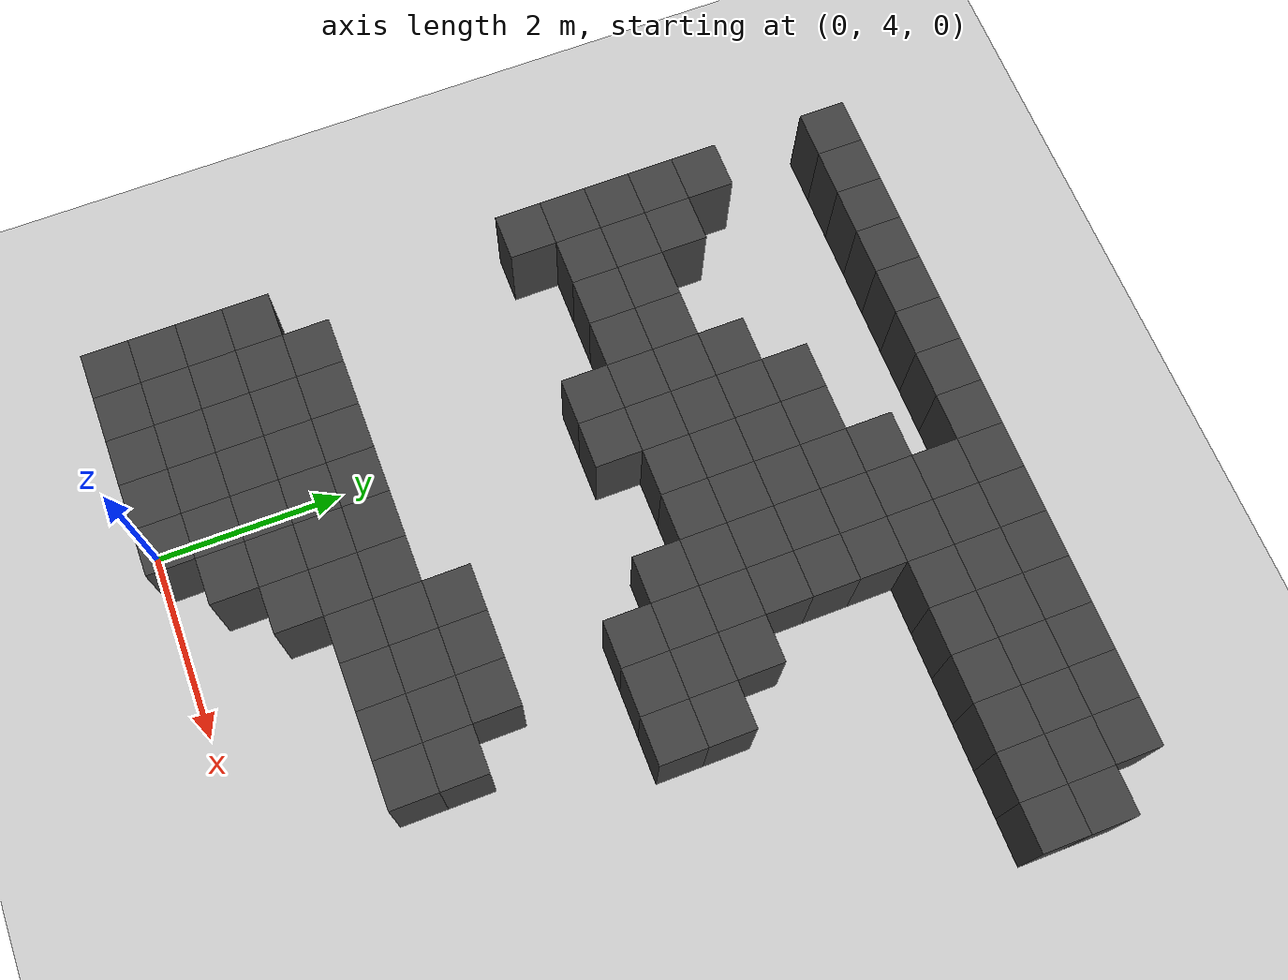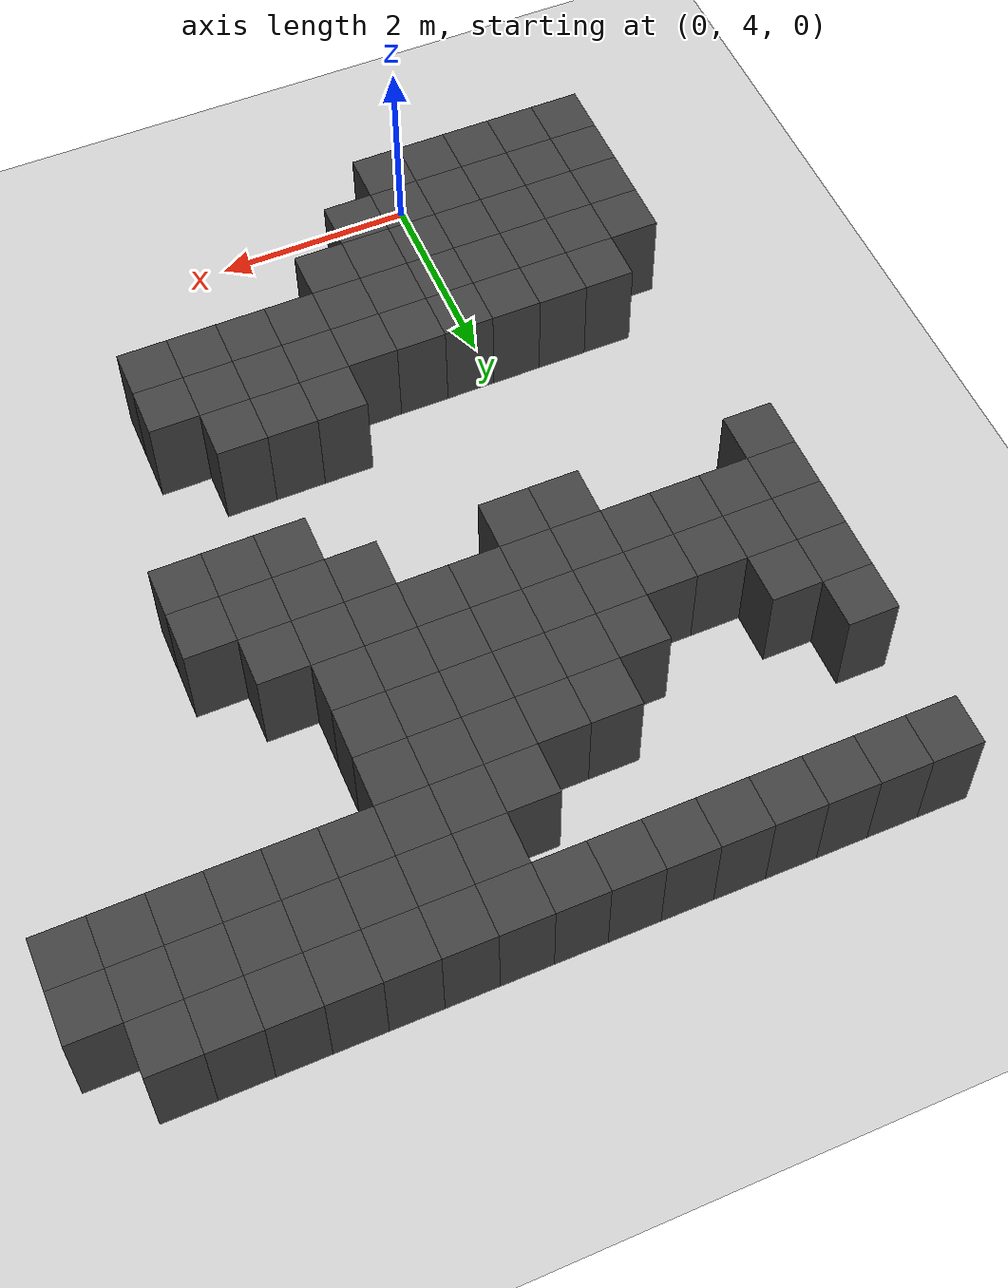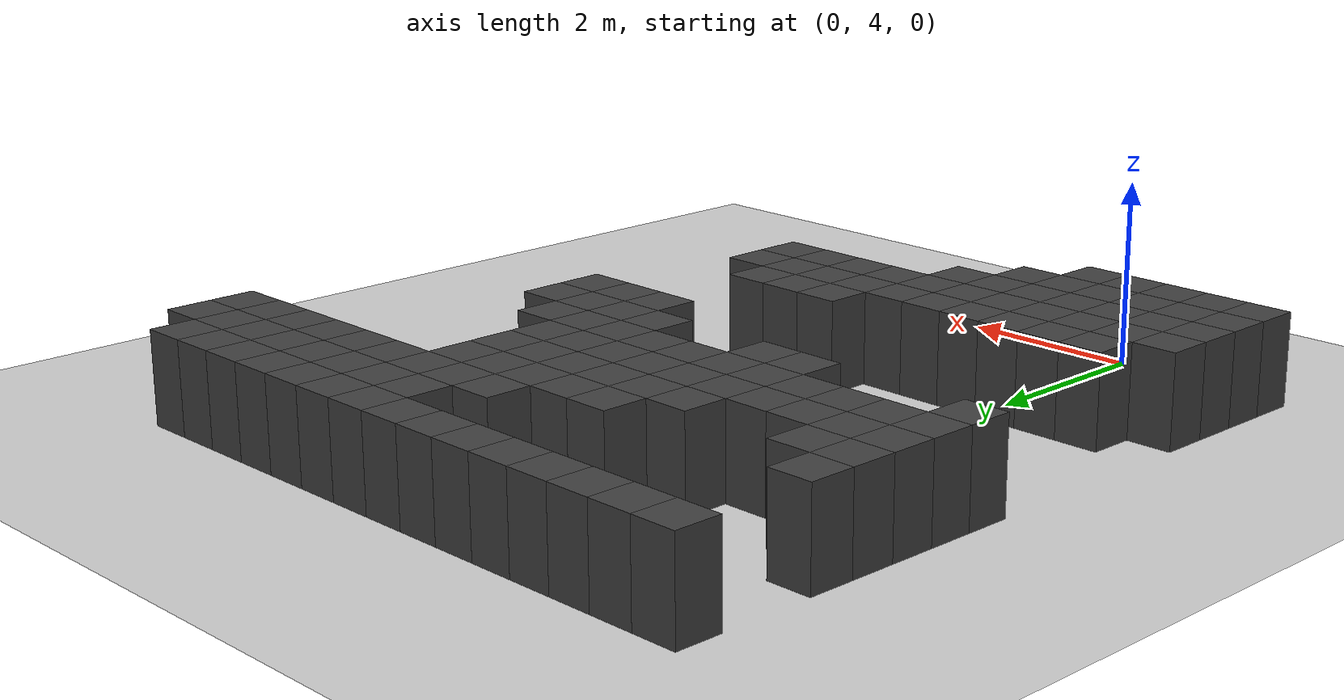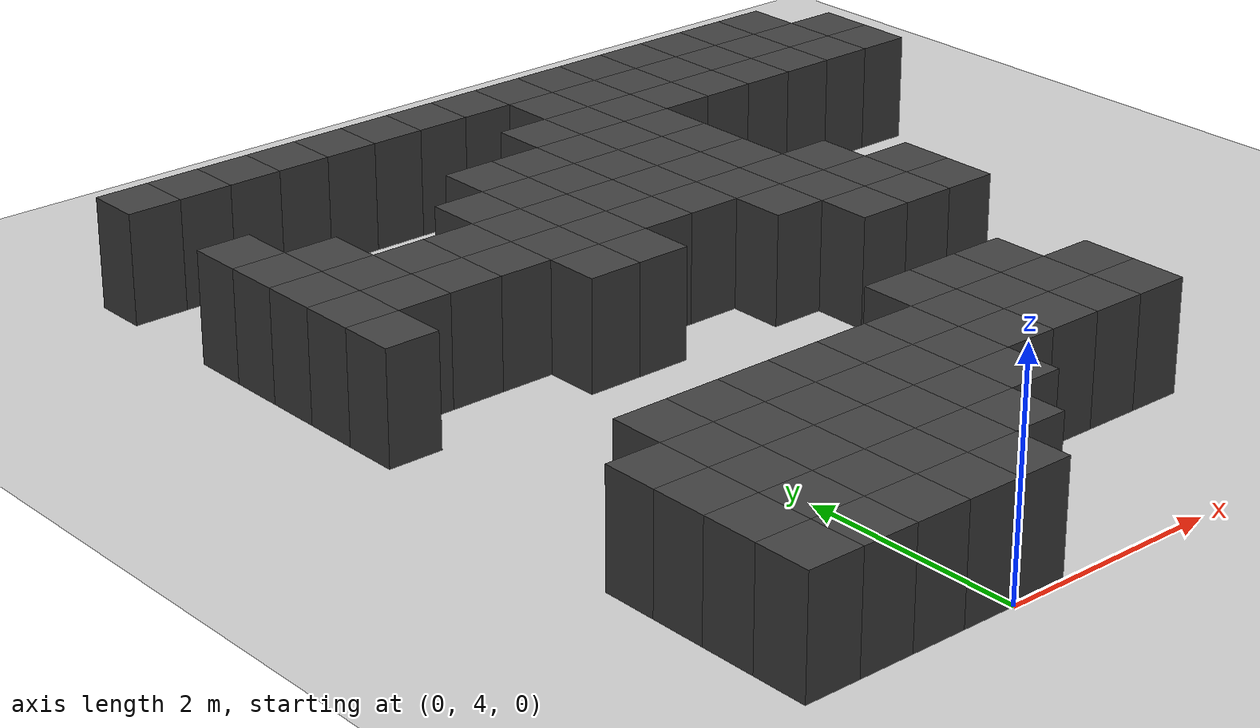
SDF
<sdf version="1.7">
 <world name="map_9705">
  <model name="ground_plane">
   <static>true</static>
   <link name="link">
    <collision name="collision">
     <geometry><plane><normal>0 0 1</normal><size>200 200</size></plane></geometry>
    </collision>
    <visual name="visual">
     <geometry><plane><normal>0 0 1</normal><size>200 200</size></plane></geometry>
     <material><ambient>0.8 0.8 0.8 1</ambient><diffuse>0.8 0.8 0.8 1</diffuse></material>
    </visual>
   </link>
  </model>
  <model name="maze_environment">
   <static>true</static>
   <link name="wall_21">
    <pose>-1.750 12.250 0.500 0 0 0</pose>
    <collision name="col"><geometry><box><size>0.5 0.5 1.0</size></box></geometry></collision>
    <visual name="vis">
     <geometry><box><size>0.5 0.5 1.0</size></box></geometry>
     <material><ambient>0.15 0.15 0.15 1</ambient><diffuse>0.25 0.25 0.25 1</diffuse></material>
    </visual>
   </link>
   <link name="wall_22">
    <pose>-1.250 12.250 0.500 0 0 0</pose>
    <collision name="col"><geometry><box><size>0.5 0.5 1.0</size></box></geometry></collision>
    <visual name="vis">
     <geometry><box><size>0.5 0.5 1.0</size></box></geometry>
     <material><ambient>0.15 0.15 0.15 1</ambient><diffuse>0.25 0.25 0.25 1</diffuse></material>
    </visual>
   </link>
   <link name="wall_23">
    <pose>-0.750 12.250 0.500 0 0 0</pose>
    <collision name="col"><geometry><box><size>0.5 0.5 1.0</size></box></geometry></collision>
    <visual name="vis">
     <geometry><box><size>0.5 0.5 1.0</size></box></geometry>
     <material><ambient>0.15 0.15 0.15 1</ambient><diffuse>0.25 0.25 0.25 1</diffuse></material>
    </visual>
   </link>
   <link name="wall_24">
    <pose>-0.250 12.250 0.500 0 0 0</pose>
    <collision name="col"><geometry><box><size>0.5 0.5 1.0</size></box></geometry></collision>
    <visual name="vis">
     <geometry><box><size>0.5 0.5 1.0</size></box></geometry>
     <material><ambient>0.15 0.15 0.15 1</ambient><diffuse>0.25 0.25 0.25 1</diffuse></material>
    </visual>
   </link>
   <link name="wall_25">
    <pose>0.250 12.250 0.500 0 0 0</pose>
    <collision name="col"><geometry><box><size>0.5 0.5 1.0</size></box></geometry></collision>
    <visual name="vis">
     <geometry><box><size>0.5 0.5 1.0</size></box></geometry>
     <material><ambient>0.15 0.15 0.15 1</ambient><diffuse>0.25 0.25 0.25 1</diffuse></material>
    </visual>
   </link>
   <link name="wall_26">
    <pose>0.750 12.250 0.500 0 0 0</pose>
    <collision name="col"><geometry><box><size>0.5 0.5 1.0</size></box></geometry></collision>
    <visual name="vis">
     <geometry><box><size>0.5 0.5 1.0</size></box></geometry>
     <material><ambient>0.15 0.15 0.15 1</ambient><diffuse>0.25 0.25 0.25 1</diffuse></material>
    </visual>
   </link>
   <link name="wall_27">
    <pose>1.250 12.250 0.500 0 0 0</pose>
    <collision name="col"><geometry><box><size>0.5 0.5 1.0</size></box></geometry></collision>
    <visual name="vis">
     <geometry><box><size>0.5 0.5 1.0</size></box></geometry>
     <material><ambient>0.15 0.15 0.15 1</ambient><diffuse>0.25 0.25 0.25 1</diffuse></material>
    </visual>
   </link>
   <link name="wall_28">
    <pose>1.750 12.250 0.500 0 0 0</pose>
    <collision name="col"><geometry><box><size>0.5 0.5 1.0</size></box></geometry></collision>
    <visual name="vis">
     <geometry><box><size>0.5 0.5 1.0</size></box></geometry>
     <material><ambient>0.15 0.15 0.15 1</ambient><diffuse>0.25 0.25 0.25 1</diffuse></material>
    </visual>
   </link>
   <link name="wall_29">
    <pose>2.250 12.250 0.500 0 0 0</pose>
    <collision name="col"><geometry><box><size>0.5 0.5 1.0</size></box></geometry></collision>
    <visual name="vis">
     <geometry><box><size>0.5 0.5 1.0</size></box></geometry>
     <material><ambient>0.15 0.15 0.15 1</ambient><diffuse>0.25 0.25 0.25 1</diffuse></material>
    </visual>
   </link>
   <link name="wall_30">
    <pose>2.750 12.250 0.500 0 0 0</pose>
    <collision name="col"><geometry><box><size>0.5 0.5 1.0</size></box></geometry></collision>
    <visual name="vis">
     <geometry><box><size>0.5 0.5 1.0</size></box></geometry>
     <material><ambient>0.15 0.15 0.15 1</ambient><diffuse>0.25 0.25 0.25 1</diffuse></material>
    </visual>
   </link>
   <link name="wall_31">
    <pose>3.250 12.250 0.500 0 0 0</pose>
    <collision name="col"><geometry><box><size>0.5 0.5 1.0</size></box></geometry></collision>
    <visual name="vis">
     <geometry><box><size>0.5 0.5 1.0</size></box></geometry>
     <material><ambient>0.15 0.15 0.15 1</ambient><diffuse>0.25 0.25 0.25 1</diffuse></material>
    </visual>
   </link>
   <link name="wall_32">
    <pose>3.750 12.250 0.500 0 0 0</pose>
    <collision name="col"><geometry><box><size>0.5 0.5 1.0</size></box></geometry></collision>
    <visual name="vis">
     <geometry><box><size>0.5 0.5 1.0</size></box></geometry>
     <material><ambient>0.15 0.15 0.15 1</ambient><diffuse>0.25 0.25 0.25 1</diffuse></material>
    </visual>
   </link>
   <link name="wall_33">
    <pose>4.250 12.250 0.500 0 0 0</pose>
    <collision name="col"><geometry><box><size>0.5 0.5 1.0</size></box></geometry></collision>
    <visual name="vis">
     <geometry><box><size>0.5 0.5 1.0</size></box></geometry>
     <material><ambient>0.15 0.15 0.15 1</ambient><diffuse>0.25 0.25 0.25 1</diffuse></material>
    </visual>
   </link>
   <link name="wall_34">
    <pose>4.750 12.250 0.500 0 0 0</pose>
    <collision name="col"><geometry><box><size>0.5 0.5 1.0</size></box></geometry></collision>
    <visual name="vis">
     <geometry><box><size>0.5 0.5 1.0</size></box></geometry>
     <material><ambient>0.15 0.15 0.15 1</ambient><diffuse>0.25 0.25 0.25 1</diffuse></material>
    </visual>
   </link>
   <link name="wall_35">
    <pose>5.250 12.250 0.500 0 0 0</pose>
    <collision name="col"><geometry><box><size>0.5 0.5 1.0</size></box></geometry></collision>
    <visual name="vis">
     <geometry><box><size>0.5 0.5 1.0</size></box></geometry>
     <material><ambient>0.15 0.15 0.15 1</ambient><diffuse>0.25 0.25 0.25 1</diffuse></material>
    </visual>
   </link>
   <link name="wall_60">
    <pose>2.250 11.750 0.500 0 0 0</pose>
    <collision name="col"><geometry><box><size>0.5 0.5 1.0</size></box></geometry></collision>
    <visual name="vis">
     <geometry><box><size>0.5 0.5 1.0</size></box></geometry>
     <material><ambient>0.15 0.15 0.15 1</ambient><diffuse>0.25 0.25 0.25 1</diffuse></material>
    </visual>
   </link>
   <link name="wall_61">
    <pose>2.750 11.750 0.500 0 0 0</pose>
    <collision name="col"><geometry><box><size>0.5 0.5 1.0</size></box></geometry></collision>
    <visual name="vis">
     <geometry><box><size>0.5 0.5 1.0</size></box></geometry>
     <material><ambient>0.15 0.15 0.15 1</ambient><diffuse>0.25 0.25 0.25 1</diffuse></material>
    </visual>
   </link>
   <link name="wall_62">
    <pose>3.250 11.750 0.500 0 0 0</pose>
    <collision name="col"><geometry><box><size>0.5 0.5 1.0</size></box></geometry></collision>
    <visual name="vis">
     <geometry><box><size>0.5 0.5 1.0</size></box></geometry>
     <material><ambient>0.15 0.15 0.15 1</ambient><diffuse>0.25 0.25 0.25 1</diffuse></material>
    </visual>
   </link>
   <link name="wall_63">
    <pose>3.750 11.750 0.500 0 0 0</pose>
    <collision name="col"><geometry><box><size>0.5 0.5 1.0</size></box></geometry></collision>
    <visual name="vis">
     <geometry><box><size>0.5 0.5 1.0</size></box></geometry>
     <material><ambient>0.15 0.15 0.15 1</ambient><diffuse>0.25 0.25 0.25 1</diffuse></material>
    </visual>
   </link>
   <link name="wall_64">
    <pose>4.250 11.750 0.500 0 0 0</pose>
    <collision name="col"><geometry><box><size>0.5 0.5 1.0</size></box></geometry></collision>
    <visual name="vis">
     <geometry><box><size>0.5 0.5 1.0</size></box></geometry>
     <material><ambient>0.15 0.15 0.15 1</ambient><diffuse>0.25 0.25 0.25 1</diffuse></material>
    </visual>
   </link>
   <link name="wall_65">
    <pose>4.750 11.750 0.500 0 0 0</pose>
    <collision name="col"><geometry><box><size>0.5 0.5 1.0</size></box></geometry></collision>
    <visual name="vis">
     <geometry><box><size>0.5 0.5 1.0</size></box></geometry>
     <material><ambient>0.15 0.15 0.15 1</ambient><diffuse>0.25 0.25 0.25 1</diffuse></material>
    </visual>
   </link>
   <link name="wall_66">
    <pose>5.250 11.750 0.500 0 0 0</pose>
    <collision name="col"><geometry><box><size>0.5 0.5 1.0</size></box></geometry></collision>
    <visual name="vis">
     <geometry><box><size>0.5 0.5 1.0</size></box></geometry>
     <material><ambient>0.15 0.15 0.15 1</ambient><diffuse>0.25 0.25 0.25 1</diffuse></material>
    </visual>
   </link>
   <link name="wall_67">
    <pose>5.750 11.750 0.500 0 0 0</pose>
    <collision name="col"><geometry><box><size>0.5 0.5 1.0</size></box></geometry></collision>
    <visual name="vis">
     <geometry><box><size>0.5 0.5 1.0</size></box></geometry>
     <material><ambient>0.15 0.15 0.15 1</ambient><diffuse>0.25 0.25 0.25 1</diffuse></material>
    </visual>
   </link>
   <link name="wall_84">
    <pose>1.750 11.250 0.500 0 0 0</pose>
    <collision name="col"><geometry><box><size>0.5 0.5 1.0</size></box></geometry></collision>
    <visual name="vis">
     <geometry><box><size>0.5 0.5 1.0</size></box></geometry>
     <material><ambient>0.15 0.15 0.15 1</ambient><diffuse>0.25 0.25 0.25 1</diffuse></material>
    </visual>
   </link>
   <link name="wall_85">
    <pose>2.250 11.250 0.500 0 0 0</pose>
    <collision name="col"><geometry><box><size>0.5 0.5 1.0</size></box></geometry></collision>
    <visual name="vis">
     <geometry><box><size>0.5 0.5 1.0</size></box></geometry>
     <material><ambient>0.15 0.15 0.15 1</ambient><diffuse>0.25 0.25 0.25 1</diffuse></material>
    </visual>
   </link>
   <link name="wall_86">
    <pose>2.750 11.250 0.500 0 0 0</pose>
    <collision name="col"><geometry><box><size>0.5 0.5 1.0</size></box></geometry></collision>
    <visual name="vis">
     <geometry><box><size>0.5 0.5 1.0</size></box></geometry>
     <material><ambient>0.15 0.15 0.15 1</ambient><diffuse>0.25 0.25 0.25 1</diffuse></material>
    </visual>
   </link>
   <link name="wall_87">
    <pose>3.250 11.250 0.500 0 0 0</pose>
    <collision name="col"><geometry><box><size>0.5 0.5 1.0</size></box></geometry></collision>
    <visual name="vis">
     <geometry><box><size>0.5 0.5 1.0</size></box></geometry>
     <material><ambient>0.15 0.15 0.15 1</ambient><diffuse>0.25 0.25 0.25 1</diffuse></material>
    </visual>
   </link>
   <link name="wall_88">
    <pose>3.750 11.250 0.500 0 0 0</pose>
    <collision name="col"><geometry><box><size>0.5 0.5 1.0</size></box></geometry></collision>
    <visual name="vis">
     <geometry><box><size>0.5 0.5 1.0</size></box></geometry>
     <material><ambient>0.15 0.15 0.15 1</ambient><diffuse>0.25 0.25 0.25 1</diffuse></material>
    </visual>
   </link>
   <link name="wall_89">
    <pose>4.250 11.250 0.500 0 0 0</pose>
    <collision name="col"><geometry><box><size>0.5 0.5 1.0</size></box></geometry></collision>
    <visual name="vis">
     <geometry><box><size>0.5 0.5 1.0</size></box></geometry>
     <material><ambient>0.15 0.15 0.15 1</ambient><diffuse>0.25 0.25 0.25 1</diffuse></material>
    </visual>
   </link>
   <link name="wall_90">
    <pose>4.750 11.250 0.500 0 0 0</pose>
    <collision name="col"><geometry><box><size>0.5 0.5 1.0</size></box></geometry></collision>
    <visual name="vis">
     <geometry><box><size>0.5 0.5 1.0</size></box></geometry>
     <material><ambient>0.15 0.15 0.15 1</ambient><diffuse>0.25 0.25 0.25 1</diffuse></material>
    </visual>
   </link>
   <link name="wall_91">
    <pose>5.250 11.250 0.500 0 0 0</pose>
    <collision name="col"><geometry><box><size>0.5 0.5 1.0</size></box></geometry></collision>
    <visual name="vis">
     <geometry><box><size>0.5 0.5 1.0</size></box></geometry>
     <material><ambient>0.15 0.15 0.15 1</ambient><diffuse>0.25 0.25 0.25 1</diffuse></material>
    </visual>
   </link>
   <link name="wall_92">
    <pose>5.750 11.250 0.500 0 0 0</pose>
    <collision name="col"><geometry><box><size>0.5 0.5 1.0</size></box></geometry></collision>
    <visual name="vis">
     <geometry><box><size>0.5 0.5 1.0</size></box></geometry>
     <material><ambient>0.15 0.15 0.15 1</ambient><diffuse>0.25 0.25 0.25 1</diffuse></material>
    </visual>
   </link>
   <link name="wall_104">
    <pose>-1.750 10.750 0.500 0 0 0</pose>
    <collision name="col"><geometry><box><size>0.5 0.5 1.0</size></box></geometry></collision>
    <visual name="vis">
     <geometry><box><size>0.5 0.5 1.0</size></box></geometry>
     <material><ambient>0.15 0.15 0.15 1</ambient><diffuse>0.25 0.25 0.25 1</diffuse></material>
    </visual>
   </link>
   <link name="wall_105">
    <pose>0.750 10.750 0.500 0 0 0</pose>
    <collision name="col"><geometry><box><size>0.5 0.5 1.0</size></box></geometry></collision>
    <visual name="vis">
     <geometry><box><size>0.5 0.5 1.0</size></box></geometry>
     <material><ambient>0.15 0.15 0.15 1</ambient><diffuse>0.25 0.25 0.25 1</diffuse></material>
    </visual>
   </link>
   <link name="wall_106">
    <pose>1.250 10.750 0.500 0 0 0</pose>
    <collision name="col"><geometry><box><size>0.5 0.5 1.0</size></box></geometry></collision>
    <visual name="vis">
     <geometry><box><size>0.5 0.5 1.0</size></box></geometry>
     <material><ambient>0.15 0.15 0.15 1</ambient><diffuse>0.25 0.25 0.25 1</diffuse></material>
    </visual>
   </link>
   <link name="wall_107">
    <pose>1.750 10.750 0.500 0 0 0</pose>
    <collision name="col"><geometry><box><size>0.5 0.5 1.0</size></box></geometry></collision>
    <visual name="vis">
     <geometry><box><size>0.5 0.5 1.0</size></box></geometry>
     <material><ambient>0.15 0.15 0.15 1</ambient><diffuse>0.25 0.25 0.25 1</diffuse></material>
    </visual>
   </link>
   <link name="wall_108">
    <pose>2.250 10.750 0.500 0 0 0</pose>
    <collision name="col"><geometry><box><size>0.5 0.5 1.0</size></box></geometry></collision>
    <visual name="vis">
     <geometry><box><size>0.5 0.5 1.0</size></box></geometry>
     <material><ambient>0.15 0.15 0.15 1</ambient><diffuse>0.25 0.25 0.25 1</diffuse></material>
    </visual>
   </link>
   <link name="wall_109">
    <pose>2.750 10.750 0.500 0 0 0</pose>
    <collision name="col"><geometry><box><size>0.5 0.5 1.0</size></box></geometry></collision>
    <visual name="vis">
     <geometry><box><size>0.5 0.5 1.0</size></box></geometry>
     <material><ambient>0.15 0.15 0.15 1</ambient><diffuse>0.25 0.25 0.25 1</diffuse></material>
    </visual>
   </link>
   <link name="wall_121">
    <pose>-1.750 10.250 0.500 0 0 0</pose>
    <collision name="col"><geometry><box><size>0.5 0.5 1.0</size></box></geometry></collision>
    <visual name="vis">
     <geometry><box><size>0.5 0.5 1.0</size></box></geometry>
     <material><ambient>0.15 0.15 0.15 1</ambient><diffuse>0.25 0.25 0.25 1</diffuse></material>
    </visual>
   </link>
   <link name="wall_122">
    <pose>-1.250 10.250 0.500 0 0 0</pose>
    <collision name="col"><geometry><box><size>0.5 0.5 1.0</size></box></geometry></collision>
    <visual name="vis">
     <geometry><box><size>0.5 0.5 1.0</size></box></geometry>
     <material><ambient>0.15 0.15 0.15 1</ambient><diffuse>0.25 0.25 0.25 1</diffuse></material>
    </visual>
   </link>
   <link name="wall_123">
    <pose>0.250 10.250 0.500 0 0 0</pose>
    <collision name="col"><geometry><box><size>0.5 0.5 1.0</size></box></geometry></collision>
    <visual name="vis">
     <geometry><box><size>0.5 0.5 1.0</size></box></geometry>
     <material><ambient>0.15 0.15 0.15 1</ambient><diffuse>0.25 0.25 0.25 1</diffuse></material>
    </visual>
   </link>
   <link name="wall_124">
    <pose>0.750 10.250 0.500 0 0 0</pose>
    <collision name="col"><geometry><box><size>0.5 0.5 1.0</size></box></geometry></collision>
    <visual name="vis">
     <geometry><box><size>0.5 0.5 1.0</size></box></geometry>
     <material><ambient>0.15 0.15 0.15 1</ambient><diffuse>0.25 0.25 0.25 1</diffuse></material>
    </visual>
   </link>
   <link name="wall_125">
    <pose>1.250 10.250 0.500 0 0 0</pose>
    <collision name="col"><geometry><box><size>0.5 0.5 1.0</size></box></geometry></collision>
    <visual name="vis">
     <geometry><box><size>0.5 0.5 1.0</size></box></geometry>
     <material><ambient>0.15 0.15 0.15 1</ambient><diffuse>0.25 0.25 0.25 1</diffuse></material>
    </visual>
   </link>
   <link name="wall_126">
    <pose>1.750 10.250 0.500 0 0 0</pose>
    <collision name="col"><geometry><box><size>0.5 0.5 1.0</size></box></geometry></collision>
    <visual name="vis">
     <geometry><box><size>0.5 0.5 1.0</size></box></geometry>
     <material><ambient>0.15 0.15 0.15 1</ambient><diffuse>0.25 0.25 0.25 1</diffuse></material>
    </visual>
   </link>
   <link name="wall_127">
    <pose>2.250 10.250 0.500 0 0 0</pose>
    <collision name="col"><geometry><box><size>0.5 0.5 1.0</size></box></geometry></collision>
    <visual name="vis">
     <geometry><box><size>0.5 0.5 1.0</size></box></geometry>
     <material><ambient>0.15 0.15 0.15 1</ambient><diffuse>0.25 0.25 0.25 1</diffuse></material>
    </visual>
   </link>
   <link name="wall_128">
    <pose>2.750 10.250 0.500 0 0 0</pose>
    <collision name="col"><geometry><box><size>0.5 0.5 1.0</size></box></geometry></collision>
    <visual name="vis">
     <geometry><box><size>0.5 0.5 1.0</size></box></geometry>
     <material><ambient>0.15 0.15 0.15 1</ambient><diffuse>0.25 0.25 0.25 1</diffuse></material>
    </visual>
   </link>
   <link name="wall_141">
    <pose>-1.750 9.750 0.500 0 0 0</pose>
    <collision name="col"><geometry><box><size>0.5 0.5 1.0</size></box></geometry></collision>
    <visual name="vis">
     <geometry><box><size>0.5 0.5 1.0</size></box></geometry>
     <material><ambient>0.15 0.15 0.15 1</ambient><diffuse>0.25 0.25 0.25 1</diffuse></material>
    </visual>
   </link>
   <link name="wall_142">
    <pose>-1.250 9.750 0.500 0 0 0</pose>
    <collision name="col"><geometry><box><size>0.5 0.5 1.0</size></box></geometry></collision>
    <visual name="vis">
     <geometry><box><size>0.5 0.5 1.0</size></box></geometry>
     <material><ambient>0.15 0.15 0.15 1</ambient><diffuse>0.25 0.25 0.25 1</diffuse></material>
    </visual>
   </link>
   <link name="wall_143">
    <pose>-0.750 9.750 0.500 0 0 0</pose>
    <collision name="col"><geometry><box><size>0.5 0.5 1.0</size></box></geometry></collision>
    <visual name="vis">
     <geometry><box><size>0.5 0.5 1.0</size></box></geometry>
     <material><ambient>0.15 0.15 0.15 1</ambient><diffuse>0.25 0.25 0.25 1</diffuse></material>
    </visual>
   </link>
   <link name="wall_144">
    <pose>-0.250 9.750 0.500 0 0 0</pose>
    <collision name="col"><geometry><box><size>0.5 0.5 1.0</size></box></geometry></collision>
    <visual name="vis">
     <geometry><box><size>0.5 0.5 1.0</size></box></geometry>
     <material><ambient>0.15 0.15 0.15 1</ambient><diffuse>0.25 0.25 0.25 1</diffuse></material>
    </visual>
   </link>
   <link name="wall_145">
    <pose>0.250 9.750 0.500 0 0 0</pose>
    <collision name="col"><geometry><box><size>0.5 0.5 1.0</size></box></geometry></collision>
    <visual name="vis">
     <geometry><box><size>0.5 0.5 1.0</size></box></geometry>
     <material><ambient>0.15 0.15 0.15 1</ambient><diffuse>0.25 0.25 0.25 1</diffuse></material>
    </visual>
   </link>
   <link name="wall_146">
    <pose>0.750 9.750 0.500 0 0 0</pose>
    <collision name="col"><geometry><box><size>0.5 0.5 1.0</size></box></geometry></collision>
    <visual name="vis">
     <geometry><box><size>0.5 0.5 1.0</size></box></geometry>
     <material><ambient>0.15 0.15 0.15 1</ambient><diffuse>0.25 0.25 0.25 1</diffuse></material>
    </visual>
   </link>
   <link name="wall_147">
    <pose>1.250 9.750 0.500 0 0 0</pose>
    <collision name="col"><geometry><box><size>0.5 0.5 1.0</size></box></geometry></collision>
    <visual name="vis">
     <geometry><box><size>0.5 0.5 1.0</size></box></geometry>
     <material><ambient>0.15 0.15 0.15 1</ambient><diffuse>0.25 0.25 0.25 1</diffuse></material>
    </visual>
   </link>
   <link name="wall_148">
    <pose>1.750 9.750 0.500 0 0 0</pose>
    <collision name="col"><geometry><box><size>0.5 0.5 1.0</size></box></geometry></collision>
    <visual name="vis">
     <geometry><box><size>0.5 0.5 1.0</size></box></geometry>
     <material><ambient>0.15 0.15 0.15 1</ambient><diffuse>0.25 0.25 0.25 1</diffuse></material>
    </visual>
   </link>
   <link name="wall_149">
    <pose>2.250 9.750 0.500 0 0 0</pose>
    <collision name="col"><geometry><box><size>0.5 0.5 1.0</size></box></geometry></collision>
    <visual name="vis">
     <geometry><box><size>0.5 0.5 1.0</size></box></geometry>
     <material><ambient>0.15 0.15 0.15 1</ambient><diffuse>0.25 0.25 0.25 1</diffuse></material>
    </visual>
   </link>
   <link name="wall_150">
    <pose>2.750 9.750 0.500 0 0 0</pose>
    <collision name="col"><geometry><box><size>0.5 0.5 1.0</size></box></geometry></collision>
    <visual name="vis">
     <geometry><box><size>0.5 0.5 1.0</size></box></geometry>
     <material><ambient>0.15 0.15 0.15 1</ambient><diffuse>0.25 0.25 0.25 1</diffuse></material>
    </visual>
   </link>
   <link name="wall_164">
    <pose>-1.750 9.250 0.500 0 0 0</pose>
    <collision name="col"><geometry><box><size>0.5 0.5 1.0</size></box></geometry></collision>
    <visual name="vis">
     <geometry><box><size>0.5 0.5 1.0</size></box></geometry>
     <material><ambient>0.15 0.15 0.15 1</ambient><diffuse>0.25 0.25 0.25 1</diffuse></material>
    </visual>
   </link>
   <link name="wall_165">
    <pose>-1.250 9.250 0.500 0 0 0</pose>
    <collision name="col"><geometry><box><size>0.5 0.5 1.0</size></box></geometry></collision>
    <visual name="vis">
     <geometry><box><size>0.5 0.5 1.0</size></box></geometry>
     <material><ambient>0.15 0.15 0.15 1</ambient><diffuse>0.25 0.25 0.25 1</diffuse></material>
    </visual>
   </link>
   <link name="wall_166">
    <pose>-0.750 9.250 0.500 0 0 0</pose>
    <collision name="col"><geometry><box><size>0.5 0.5 1.0</size></box></geometry></collision>
    <visual name="vis">
     <geometry><box><size>0.5 0.5 1.0</size></box></geometry>
     <material><ambient>0.15 0.15 0.15 1</ambient><diffuse>0.25 0.25 0.25 1</diffuse></material>
    </visual>
   </link>
   <link name="wall_167">
    <pose>-0.250 9.250 0.500 0 0 0</pose>
    <collision name="col"><geometry><box><size>0.5 0.5 1.0</size></box></geometry></collision>
    <visual name="vis">
     <geometry><box><size>0.5 0.5 1.0</size></box></geometry>
     <material><ambient>0.15 0.15 0.15 1</ambient><diffuse>0.25 0.25 0.25 1</diffuse></material>
    </visual>
   </link>
   <link name="wall_168">
    <pose>0.250 9.250 0.500 0 0 0</pose>
    <collision name="col"><geometry><box><size>0.5 0.5 1.0</size></box></geometry></collision>
    <visual name="vis">
     <geometry><box><size>0.5 0.5 1.0</size></box></geometry>
     <material><ambient>0.15 0.15 0.15 1</ambient><diffuse>0.25 0.25 0.25 1</diffuse></material>
    </visual>
   </link>
   <link name="wall_169">
    <pose>0.750 9.250 0.500 0 0 0</pose>
    <collision name="col"><geometry><box><size>0.5 0.5 1.0</size></box></geometry></collision>
    <visual name="vis">
     <geometry><box><size>0.5 0.5 1.0</size></box></geometry>
     <material><ambient>0.15 0.15 0.15 1</ambient><diffuse>0.25 0.25 0.25 1</diffuse></material>
    </visual>
   </link>
   <link name="wall_170">
    <pose>1.250 9.250 0.500 0 0 0</pose>
    <collision name="col"><geometry><box><size>0.5 0.5 1.0</size></box></geometry></collision>
    <visual name="vis">
     <geometry><box><size>0.5 0.5 1.0</size></box></geometry>
     <material><ambient>0.15 0.15 0.15 1</ambient><diffuse>0.25 0.25 0.25 1</diffuse></material>
    </visual>
   </link>
   <link name="wall_171">
    <pose>1.750 9.250 0.500 0 0 0</pose>
    <collision name="col"><geometry><box><size>0.5 0.5 1.0</size></box></geometry></collision>
    <visual name="vis">
     <geometry><box><size>0.5 0.5 1.0</size></box></geometry>
     <material><ambient>0.15 0.15 0.15 1</ambient><diffuse>0.25 0.25 0.25 1</diffuse></material>
    </visual>
   </link>
   <link name="wall_172">
    <pose>2.250 9.250 0.500 0 0 0</pose>
    <collision name="col"><geometry><box><size>0.5 0.5 1.0</size></box></geometry></collision>
    <visual name="vis">
     <geometry><box><size>0.5 0.5 1.0</size></box></geometry>
     <material><ambient>0.15 0.15 0.15 1</ambient><diffuse>0.25 0.25 0.25 1</diffuse></material>
    </visual>
   </link>
   <link name="wall_173">
    <pose>2.750 9.250 0.500 0 0 0</pose>
    <collision name="col"><geometry><box><size>0.5 0.5 1.0</size></box></geometry></collision>
    <visual name="vis">
     <geometry><box><size>0.5 0.5 1.0</size></box></geometry>
     <material><ambient>0.15 0.15 0.15 1</ambient><diffuse>0.25 0.25 0.25 1</diffuse></material>
    </visual>
   </link>
   <link name="wall_174">
    <pose>3.250 9.250 0.500 0 0 0</pose>
    <collision name="col"><geometry><box><size>0.5 0.5 1.0</size></box></geometry></collision>
    <visual name="vis">
     <geometry><box><size>0.5 0.5 1.0</size></box></geometry>
     <material><ambient>0.15 0.15 0.15 1</ambient><diffuse>0.25 0.25 0.25 1</diffuse></material>
    </visual>
   </link>
   <link name="wall_187">
    <pose>-1.750 8.750 0.500 0 0 0</pose>
    <collision name="col"><geometry><box><size>0.5 0.5 1.0</size></box></geometry></collision>
    <visual name="vis">
     <geometry><box><size>0.5 0.5 1.0</size></box></geometry>
     <material><ambient>0.15 0.15 0.15 1</ambient><diffuse>0.25 0.25 0.25 1</diffuse></material>
    </visual>
   </link>
   <link name="wall_188">
    <pose>0.250 8.750 0.500 0 0 0</pose>
    <collision name="col"><geometry><box><size>0.5 0.5 1.0</size></box></geometry></collision>
    <visual name="vis">
     <geometry><box><size>0.5 0.5 1.0</size></box></geometry>
     <material><ambient>0.15 0.15 0.15 1</ambient><diffuse>0.25 0.25 0.25 1</diffuse></material>
    </visual>
   </link>
   <link name="wall_189">
    <pose>0.750 8.750 0.500 0 0 0</pose>
    <collision name="col"><geometry><box><size>0.5 0.5 1.0</size></box></geometry></collision>
    <visual name="vis">
     <geometry><box><size>0.5 0.5 1.0</size></box></geometry>
     <material><ambient>0.15 0.15 0.15 1</ambient><diffuse>0.25 0.25 0.25 1</diffuse></material>
    </visual>
   </link>
   <link name="wall_190">
    <pose>2.250 8.750 0.500 0 0 0</pose>
    <collision name="col"><geometry><box><size>0.5 0.5 1.0</size></box></geometry></collision>
    <visual name="vis">
     <geometry><box><size>0.5 0.5 1.0</size></box></geometry>
     <material><ambient>0.15 0.15 0.15 1</ambient><diffuse>0.25 0.25 0.25 1</diffuse></material>
    </visual>
   </link>
   <link name="wall_191">
    <pose>2.750 8.750 0.500 0 0 0</pose>
    <collision name="col"><geometry><box><size>0.5 0.5 1.0</size></box></geometry></collision>
    <visual name="vis">
     <geometry><box><size>0.5 0.5 1.0</size></box></geometry>
     <material><ambient>0.15 0.15 0.15 1</ambient><diffuse>0.25 0.25 0.25 1</diffuse></material>
    </visual>
   </link>
   <link name="wall_192">
    <pose>3.250 8.750 0.500 0 0 0</pose>
    <collision name="col"><geometry><box><size>0.5 0.5 1.0</size></box></geometry></collision>
    <visual name="vis">
     <geometry><box><size>0.5 0.5 1.0</size></box></geometry>
     <material><ambient>0.15 0.15 0.15 1</ambient><diffuse>0.25 0.25 0.25 1</diffuse></material>
    </visual>
   </link>
   <link name="wall_193">
    <pose>3.750 8.750 0.500 0 0 0</pose>
    <collision name="col"><geometry><box><size>0.5 0.5 1.0</size></box></geometry></collision>
    <visual name="vis">
     <geometry><box><size>0.5 0.5 1.0</size></box></geometry>
     <material><ambient>0.15 0.15 0.15 1</ambient><diffuse>0.25 0.25 0.25 1</diffuse></material>
    </visual>
   </link>
   <link name="wall_205">
    <pose>2.750 8.250 0.500 0 0 0</pose>
    <collision name="col"><geometry><box><size>0.5 0.5 1.0</size></box></geometry></collision>
    <visual name="vis">
     <geometry><box><size>0.5 0.5 1.0</size></box></geometry>
     <material><ambient>0.15 0.15 0.15 1</ambient><diffuse>0.25 0.25 0.25 1</diffuse></material>
    </visual>
   </link>
   <link name="wall_206">
    <pose>3.250 8.250 0.500 0 0 0</pose>
    <collision name="col"><geometry><box><size>0.5 0.5 1.0</size></box></geometry></collision>
    <visual name="vis">
     <geometry><box><size>0.5 0.5 1.0</size></box></geometry>
     <material><ambient>0.15 0.15 0.15 1</ambient><diffuse>0.25 0.25 0.25 1</diffuse></material>
    </visual>
   </link>
   <link name="wall_207">
    <pose>3.750 8.250 0.500 0 0 0</pose>
    <collision name="col"><geometry><box><size>0.5 0.5 1.0</size></box></geometry></collision>
    <visual name="vis">
     <geometry><box><size>0.5 0.5 1.0</size></box></geometry>
     <material><ambient>0.15 0.15 0.15 1</ambient><diffuse>0.25 0.25 0.25 1</diffuse></material>
    </visual>
   </link>
   <link name="wall_241">
    <pose>1.750 6.750 0.500 0 0 0</pose>
    <collision name="col"><geometry><box><size>0.5 0.5 1.0</size></box></geometry></collision>
    <visual name="vis">
     <geometry><box><size>0.5 0.5 1.0</size></box></geometry>
     <material><ambient>0.15 0.15 0.15 1</ambient><diffuse>0.25 0.25 0.25 1</diffuse></material>
    </visual>
   </link>
   <link name="wall_242">
    <pose>2.250 6.750 0.500 0 0 0</pose>
    <collision name="col"><geometry><box><size>0.5 0.5 1.0</size></box></geometry></collision>
    <visual name="vis">
     <geometry><box><size>0.5 0.5 1.0</size></box></geometry>
     <material><ambient>0.15 0.15 0.15 1</ambient><diffuse>0.25 0.25 0.25 1</diffuse></material>
    </visual>
   </link>
   <link name="wall_243">
    <pose>2.750 6.750 0.500 0 0 0</pose>
    <collision name="col"><geometry><box><size>0.5 0.5 1.0</size></box></geometry></collision>
    <visual name="vis">
     <geometry><box><size>0.5 0.5 1.0</size></box></geometry>
     <material><ambient>0.15 0.15 0.15 1</ambient><diffuse>0.25 0.25 0.25 1</diffuse></material>
    </visual>
   </link>
   <link name="wall_266">
    <pose>-1.250 6.250 0.500 0 0 0</pose>
    <collision name="col"><geometry><box><size>0.5 0.5 1.0</size></box></geometry></collision>
    <visual name="vis">
     <geometry><box><size>0.5 0.5 1.0</size></box></geometry>
     <material><ambient>0.15 0.15 0.15 1</ambient><diffuse>0.25 0.25 0.25 1</diffuse></material>
    </visual>
   </link>
   <link name="wall_267">
    <pose>-0.750 6.250 0.500 0 0 0</pose>
    <collision name="col"><geometry><box><size>0.5 0.5 1.0</size></box></geometry></collision>
    <visual name="vis">
     <geometry><box><size>0.5 0.5 1.0</size></box></geometry>
     <material><ambient>0.15 0.15 0.15 1</ambient><diffuse>0.25 0.25 0.25 1</diffuse></material>
    </visual>
   </link>
   <link name="wall_268">
    <pose>-0.250 6.250 0.500 0 0 0</pose>
    <collision name="col"><geometry><box><size>0.5 0.5 1.0</size></box></geometry></collision>
    <visual name="vis">
     <geometry><box><size>0.5 0.5 1.0</size></box></geometry>
     <material><ambient>0.15 0.15 0.15 1</ambient><diffuse>0.25 0.25 0.25 1</diffuse></material>
    </visual>
   </link>
   <link name="wall_269">
    <pose>0.250 6.250 0.500 0 0 0</pose>
    <collision name="col"><geometry><box><size>0.5 0.5 1.0</size></box></geometry></collision>
    <visual name="vis">
     <geometry><box><size>0.5 0.5 1.0</size></box></geometry>
     <material><ambient>0.15 0.15 0.15 1</ambient><diffuse>0.25 0.25 0.25 1</diffuse></material>
    </visual>
   </link>
   <link name="wall_270">
    <pose>0.750 6.250 0.500 0 0 0</pose>
    <collision name="col"><geometry><box><size>0.5 0.5 1.0</size></box></geometry></collision>
    <visual name="vis">
     <geometry><box><size>0.5 0.5 1.0</size></box></geometry>
     <material><ambient>0.15 0.15 0.15 1</ambient><diffuse>0.25 0.25 0.25 1</diffuse></material>
    </visual>
   </link>
   <link name="wall_271">
    <pose>1.250 6.250 0.500 0 0 0</pose>
    <collision name="col"><geometry><box><size>0.5 0.5 1.0</size></box></geometry></collision>
    <visual name="vis">
     <geometry><box><size>0.5 0.5 1.0</size></box></geometry>
     <material><ambient>0.15 0.15 0.15 1</ambient><diffuse>0.25 0.25 0.25 1</diffuse></material>
    </visual>
   </link>
   <link name="wall_272">
    <pose>1.750 6.250 0.500 0 0 0</pose>
    <collision name="col"><geometry><box><size>0.5 0.5 1.0</size></box></geometry></collision>
    <visual name="vis">
     <geometry><box><size>0.5 0.5 1.0</size></box></geometry>
     <material><ambient>0.15 0.15 0.15 1</ambient><diffuse>0.25 0.25 0.25 1</diffuse></material>
    </visual>
   </link>
   <link name="wall_273">
    <pose>2.250 6.250 0.500 0 0 0</pose>
    <collision name="col"><geometry><box><size>0.5 0.5 1.0</size></box></geometry></collision>
    <visual name="vis">
     <geometry><box><size>0.5 0.5 1.0</size></box></geometry>
     <material><ambient>0.15 0.15 0.15 1</ambient><diffuse>0.25 0.25 0.25 1</diffuse></material>
    </visual>
   </link>
   <link name="wall_274">
    <pose>2.750 6.250 0.500 0 0 0</pose>
    <collision name="col"><geometry><box><size>0.5 0.5 1.0</size></box></geometry></collision>
    <visual name="vis">
     <geometry><box><size>0.5 0.5 1.0</size></box></geometry>
     <material><ambient>0.15 0.15 0.15 1</ambient><diffuse>0.25 0.25 0.25 1</diffuse></material>
    </visual>
   </link>
   <link name="wall_275">
    <pose>3.250 6.250 0.500 0 0 0</pose>
    <collision name="col"><geometry><box><size>0.5 0.5 1.0</size></box></geometry></collision>
    <visual name="vis">
     <geometry><box><size>0.5 0.5 1.0</size></box></geometry>
     <material><ambient>0.15 0.15 0.15 1</ambient><diffuse>0.25 0.25 0.25 1</diffuse></material>
    </visual>
   </link>
   <link name="wall_296">
    <pose>-1.750 5.750 0.500 0 0 0</pose>
    <collision name="col"><geometry><box><size>0.5 0.5 1.0</size></box></geometry></collision>
    <visual name="vis">
     <geometry><box><size>0.5 0.5 1.0</size></box></geometry>
     <material><ambient>0.15 0.15 0.15 1</ambient><diffuse>0.25 0.25 0.25 1</diffuse></material>
    </visual>
   </link>
   <link name="wall_297">
    <pose>-1.250 5.750 0.500 0 0 0</pose>
    <collision name="col"><geometry><box><size>0.5 0.5 1.0</size></box></geometry></collision>
    <visual name="vis">
     <geometry><box><size>0.5 0.5 1.0</size></box></geometry>
     <material><ambient>0.15 0.15 0.15 1</ambient><diffuse>0.25 0.25 0.25 1</diffuse></material>
    </visual>
   </link>
   <link name="wall_298">
    <pose>-0.750 5.750 0.500 0 0 0</pose>
    <collision name="col"><geometry><box><size>0.5 0.5 1.0</size></box></geometry></collision>
    <visual name="vis">
     <geometry><box><size>0.5 0.5 1.0</size></box></geometry>
     <material><ambient>0.15 0.15 0.15 1</ambient><diffuse>0.25 0.25 0.25 1</diffuse></material>
    </visual>
   </link>
   <link name="wall_299">
    <pose>-0.250 5.750 0.500 0 0 0</pose>
    <collision name="col"><geometry><box><size>0.5 0.5 1.0</size></box></geometry></collision>
    <visual name="vis">
     <geometry><box><size>0.5 0.5 1.0</size></box></geometry>
     <material><ambient>0.15 0.15 0.15 1</ambient><diffuse>0.25 0.25 0.25 1</diffuse></material>
    </visual>
   </link>
   <link name="wall_300">
    <pose>0.250 5.750 0.500 0 0 0</pose>
    <collision name="col"><geometry><box><size>0.5 0.5 1.0</size></box></geometry></collision>
    <visual name="vis">
     <geometry><box><size>0.5 0.5 1.0</size></box></geometry>
     <material><ambient>0.15 0.15 0.15 1</ambient><diffuse>0.25 0.25 0.25 1</diffuse></material>
    </visual>
   </link>
   <link name="wall_301">
    <pose>0.750 5.750 0.500 0 0 0</pose>
    <collision name="col"><geometry><box><size>0.5 0.5 1.0</size></box></geometry></collision>
    <visual name="vis">
     <geometry><box><size>0.5 0.5 1.0</size></box></geometry>
     <material><ambient>0.15 0.15 0.15 1</ambient><diffuse>0.25 0.25 0.25 1</diffuse></material>
    </visual>
   </link>
   <link name="wall_302">
    <pose>1.250 5.750 0.500 0 0 0</pose>
    <collision name="col"><geometry><box><size>0.5 0.5 1.0</size></box></geometry></collision>
    <visual name="vis">
     <geometry><box><size>0.5 0.5 1.0</size></box></geometry>
     <material><ambient>0.15 0.15 0.15 1</ambient><diffuse>0.25 0.25 0.25 1</diffuse></material>
    </visual>
   </link>
   <link name="wall_303">
    <pose>1.750 5.750 0.500 0 0 0</pose>
    <collision name="col"><geometry><box><size>0.5 0.5 1.0</size></box></geometry></collision>
    <visual name="vis">
     <geometry><box><size>0.5 0.5 1.0</size></box></geometry>
     <material><ambient>0.15 0.15 0.15 1</ambient><diffuse>0.25 0.25 0.25 1</diffuse></material>
    </visual>
   </link>
   <link name="wall_304">
    <pose>2.250 5.750 0.500 0 0 0</pose>
    <collision name="col"><geometry><box><size>0.5 0.5 1.0</size></box></geometry></collision>
    <visual name="vis">
     <geometry><box><size>0.5 0.5 1.0</size></box></geometry>
     <material><ambient>0.15 0.15 0.15 1</ambient><diffuse>0.25 0.25 0.25 1</diffuse></material>
    </visual>
   </link>
   <link name="wall_305">
    <pose>2.750 5.750 0.500 0 0 0</pose>
    <collision name="col"><geometry><box><size>0.5 0.5 1.0</size></box></geometry></collision>
    <visual name="vis">
     <geometry><box><size>0.5 0.5 1.0</size></box></geometry>
     <material><ambient>0.15 0.15 0.15 1</ambient><diffuse>0.25 0.25 0.25 1</diffuse></material>
    </visual>
   </link>
   <link name="wall_306">
    <pose>3.250 5.750 0.500 0 0 0</pose>
    <collision name="col"><geometry><box><size>0.5 0.5 1.0</size></box></geometry></collision>
    <visual name="vis">
     <geometry><box><size>0.5 0.5 1.0</size></box></geometry>
     <material><ambient>0.15 0.15 0.15 1</ambient><diffuse>0.25 0.25 0.25 1</diffuse></material>
    </visual>
   </link>
   <link name="wall_329">
    <pose>-1.750 5.250 0.500 0 0 0</pose>
    <collision name="col"><geometry><box><size>0.5 0.5 1.0</size></box></geometry></collision>
    <visual name="vis">
     <geometry><box><size>0.5 0.5 1.0</size></box></geometry>
     <material><ambient>0.15 0.15 0.15 1</ambient><diffuse>0.25 0.25 0.25 1</diffuse></material>
    </visual>
   </link>
   <link name="wall_330">
    <pose>-1.250 5.250 0.500 0 0 0</pose>
    <collision name="col"><geometry><box><size>0.5 0.5 1.0</size></box></geometry></collision>
    <visual name="vis">
     <geometry><box><size>0.5 0.5 1.0</size></box></geometry>
     <material><ambient>0.15 0.15 0.15 1</ambient><diffuse>0.25 0.25 0.25 1</diffuse></material>
    </visual>
   </link>
   <link name="wall_331">
    <pose>-0.750 5.250 0.500 0 0 0</pose>
    <collision name="col"><geometry><box><size>0.5 0.5 1.0</size></box></geometry></collision>
    <visual name="vis">
     <geometry><box><size>0.5 0.5 1.0</size></box></geometry>
     <material><ambient>0.15 0.15 0.15 1</ambient><diffuse>0.25 0.25 0.25 1</diffuse></material>
    </visual>
   </link>
   <link name="wall_332">
    <pose>-0.250 5.250 0.500 0 0 0</pose>
    <collision name="col"><geometry><box><size>0.5 0.5 1.0</size></box></geometry></collision>
    <visual name="vis">
     <geometry><box><size>0.5 0.5 1.0</size></box></geometry>
     <material><ambient>0.15 0.15 0.15 1</ambient><diffuse>0.25 0.25 0.25 1</diffuse></material>
    </visual>
   </link>
   <link name="wall_333">
    <pose>0.250 5.250 0.500 0 0 0</pose>
    <collision name="col"><geometry><box><size>0.5 0.5 1.0</size></box></geometry></collision>
    <visual name="vis">
     <geometry><box><size>0.5 0.5 1.0</size></box></geometry>
     <material><ambient>0.15 0.15 0.15 1</ambient><diffuse>0.25 0.25 0.25 1</diffuse></material>
    </visual>
   </link>
   <link name="wall_334">
    <pose>0.750 5.250 0.500 0 0 0</pose>
    <collision name="col"><geometry><box><size>0.5 0.5 1.0</size></box></geometry></collision>
    <visual name="vis">
     <geometry><box><size>0.5 0.5 1.0</size></box></geometry>
     <material><ambient>0.15 0.15 0.15 1</ambient><diffuse>0.25 0.25 0.25 1</diffuse></material>
    </visual>
   </link>
   <link name="wall_335">
    <pose>1.250 5.250 0.500 0 0 0</pose>
    <collision name="col"><geometry><box><size>0.5 0.5 1.0</size></box></geometry></collision>
    <visual name="vis">
     <geometry><box><size>0.5 0.5 1.0</size></box></geometry>
     <material><ambient>0.15 0.15 0.15 1</ambient><diffuse>0.25 0.25 0.25 1</diffuse></material>
    </visual>
   </link>
   <link name="wall_359">
    <pose>-1.750 4.750 0.500 0 0 0</pose>
    <collision name="col"><geometry><box><size>0.5 0.5 1.0</size></box></geometry></collision>
    <visual name="vis">
     <geometry><box><size>0.5 0.5 1.0</size></box></geometry>
     <material><ambient>0.15 0.15 0.15 1</ambient><diffuse>0.25 0.25 0.25 1</diffuse></material>
    </visual>
   </link>
   <link name="wall_360">
    <pose>-1.250 4.750 0.500 0 0 0</pose>
    <collision name="col"><geometry><box><size>0.5 0.5 1.0</size></box></geometry></collision>
    <visual name="vis">
     <geometry><box><size>0.5 0.5 1.0</size></box></geometry>
     <material><ambient>0.15 0.15 0.15 1</ambient><diffuse>0.25 0.25 0.25 1</diffuse></material>
    </visual>
   </link>
   <link name="wall_361">
    <pose>-0.750 4.750 0.500 0 0 0</pose>
    <collision name="col"><geometry><box><size>0.5 0.5 1.0</size></box></geometry></collision>
    <visual name="vis">
     <geometry><box><size>0.5 0.5 1.0</size></box></geometry>
     <material><ambient>0.15 0.15 0.15 1</ambient><diffuse>0.25 0.25 0.25 1</diffuse></material>
    </visual>
   </link>
   <link name="wall_362">
    <pose>-0.250 4.750 0.500 0 0 0</pose>
    <collision name="col"><geometry><box><size>0.5 0.5 1.0</size></box></geometry></collision>
    <visual name="vis">
     <geometry><box><size>0.5 0.5 1.0</size></box></geometry>
     <material><ambient>0.15 0.15 0.15 1</ambient><diffuse>0.25 0.25 0.25 1</diffuse></material>
    </visual>
   </link>
   <link name="wall_363">
    <pose>0.250 4.750 0.500 0 0 0</pose>
    <collision name="col"><geometry><box><size>0.5 0.5 1.0</size></box></geometry></collision>
    <visual name="vis">
     <geometry><box><size>0.5 0.5 1.0</size></box></geometry>
     <material><ambient>0.15 0.15 0.15 1</ambient><diffuse>0.25 0.25 0.25 1</diffuse></material>
    </visual>
   </link>
   <link name="wall_364">
    <pose>0.750 4.750 0.500 0 0 0</pose>
    <collision name="col"><geometry><box><size>0.5 0.5 1.0</size></box></geometry></collision>
    <visual name="vis">
     <geometry><box><size>0.5 0.5 1.0</size></box></geometry>
     <material><ambient>0.15 0.15 0.15 1</ambient><diffuse>0.25 0.25 0.25 1</diffuse></material>
    </visual>
   </link>
   <link name="wall_390">
    <pose>-1.750 4.250 0.500 0 0 0</pose>
    <collision name="col"><geometry><box><size>0.5 0.5 1.0</size></box></geometry></collision>
    <visual name="vis">
     <geometry><box><size>0.5 0.5 1.0</size></box></geometry>
     <material><ambient>0.15 0.15 0.15 1</ambient><diffuse>0.25 0.25 0.25 1</diffuse></material>
    </visual>
   </link>
   <link name="wall_391">
    <pose>-1.250 4.250 0.500 0 0 0</pose>
    <collision name="col"><geometry><box><size>0.5 0.5 1.0</size></box></geometry></collision>
    <visual name="vis">
     <geometry><box><size>0.5 0.5 1.0</size></box></geometry>
     <material><ambient>0.15 0.15 0.15 1</ambient><diffuse>0.25 0.25 0.25 1</diffuse></material>
    </visual>
   </link>
   <link name="wall_392">
    <pose>-0.750 4.250 0.500 0 0 0</pose>
    <collision name="col"><geometry><box><size>0.5 0.5 1.0</size></box></geometry></collision>
    <visual name="vis">
     <geometry><box><size>0.5 0.5 1.0</size></box></geometry>
     <material><ambient>0.15 0.15 0.15 1</ambient><diffuse>0.25 0.25 0.25 1</diffuse></material>
    </visual>
   </link>
   <link name="wall_393">
    <pose>-0.250 4.250 0.500 0 0 0</pose>
    <collision name="col"><geometry><box><size>0.5 0.5 1.0</size></box></geometry></collision>
    <visual name="vis">
     <geometry><box><size>0.5 0.5 1.0</size></box></geometry>
     <material><ambient>0.15 0.15 0.15 1</ambient><diffuse>0.25 0.25 0.25 1</diffuse></material>
    </visual>
   </link>
   <link name="wall_394">
    <pose>0.250 4.250 0.500 0 0 0</pose>
    <collision name="col"><geometry><box><size>0.5 0.5 1.0</size></box></geometry></collision>
    <visual name="vis">
     <geometry><box><size>0.5 0.5 1.0</size></box></geometry>
     <material><ambient>0.15 0.15 0.15 1</ambient><diffuse>0.25 0.25 0.25 1</diffuse></material>
    </visual>
   </link>
  </model>
 </world>
</sdf>
